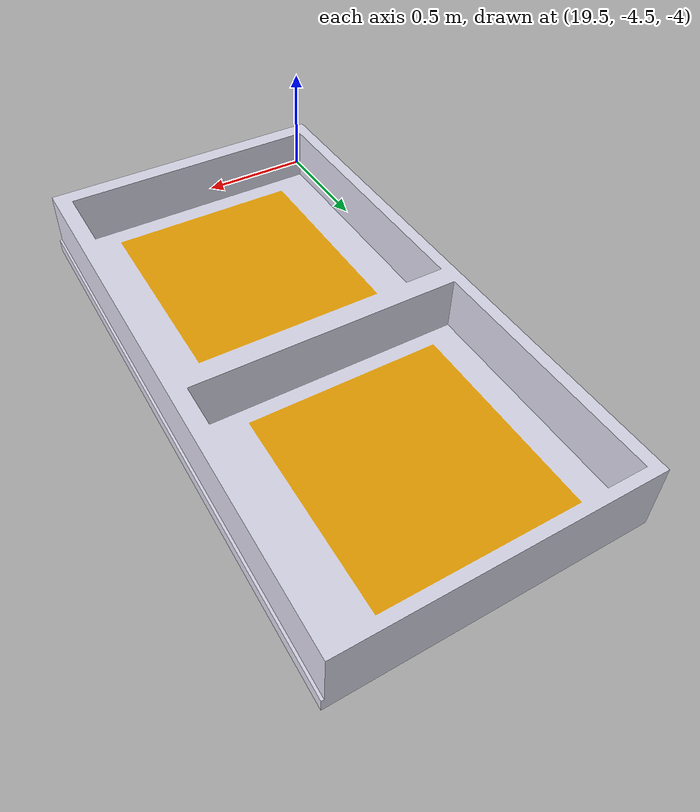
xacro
<?xml version="1.0"?>
<robot name="bin_1" xmlns:xacro="http://www.ros.org/wiki/xacro">

<!-- Introducir meshes -->
<xacro:property name="visual_mesh_file" value="file://$(find uuv_world)/models/meshes/bin.dae" />

<link name="bin1_base">
    <visual>
        <origin xyz="22.180420 -2.960028 -4.0" rpy="0.0 0.0 -1.57"/>
        <geometry>
            <mesh filename="${visual_mesh_file}" scale="1 1 1" />
        </geometry>
    </visual>

        <!-- Se deben cambiar los parametros reales-->
    <collision>
      <origin xyz="22.180420 -2.960028 -4.0" rpy="0.0 0.0 -1.57"/>
      <geometry>
        <mesh filename="${visual_mesh_file}" scale="1 1 1" />
      </geometry>
    </collision>

    <inertial>
      <origin xyz="22.180420 -2.960028 -4.0" rpy="0.0 0.0 -1.57"/>
      <mass value="1"/>
      <inertia
        ixx="1.0" ixy="0.0" ixz="0.0"
        iyy="1.0" iyz="0.0"
        izz="1.0"/>
    </inertial>

</link>

</robot>
